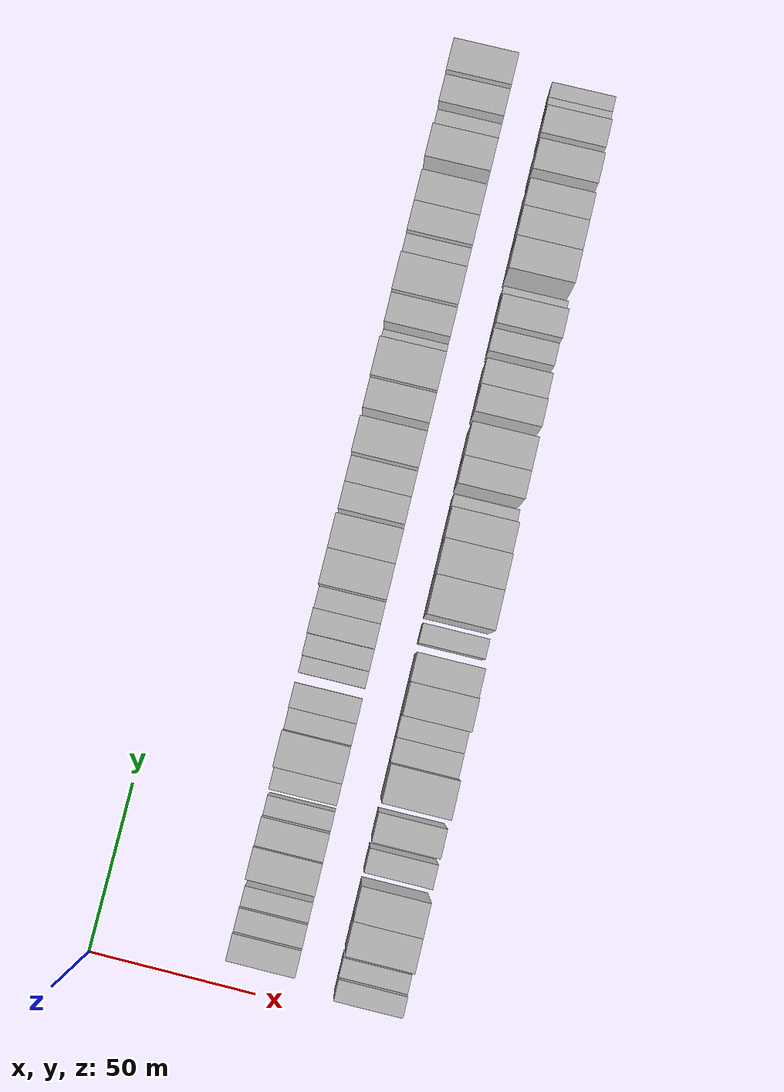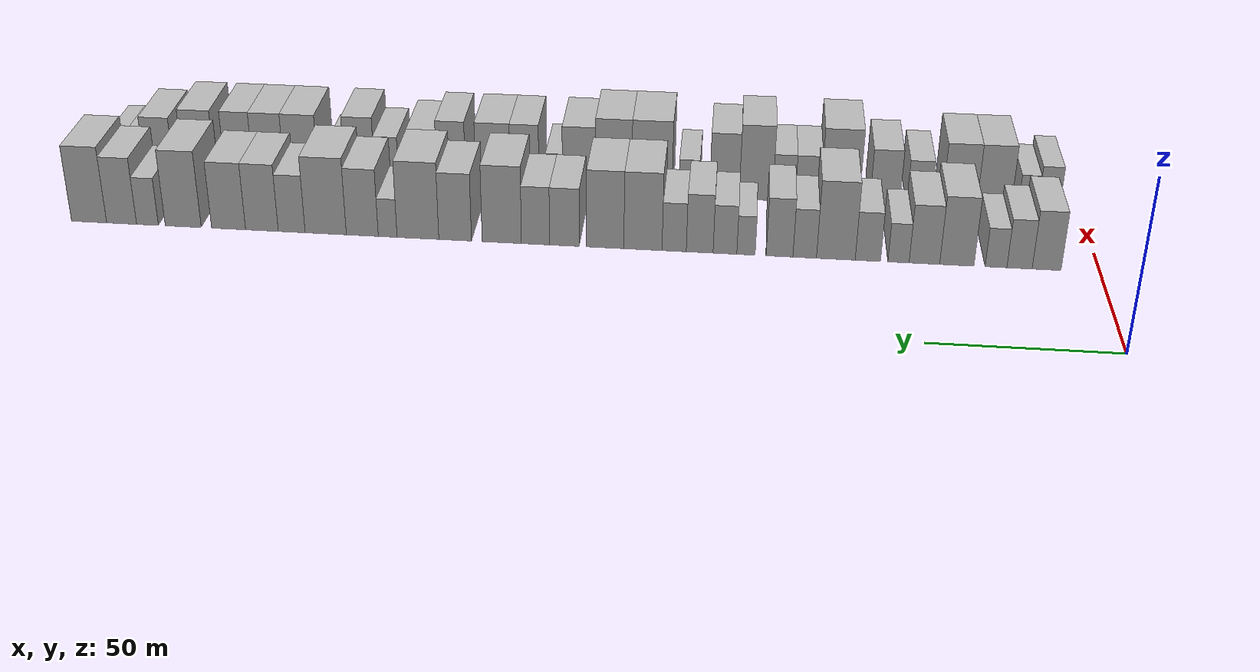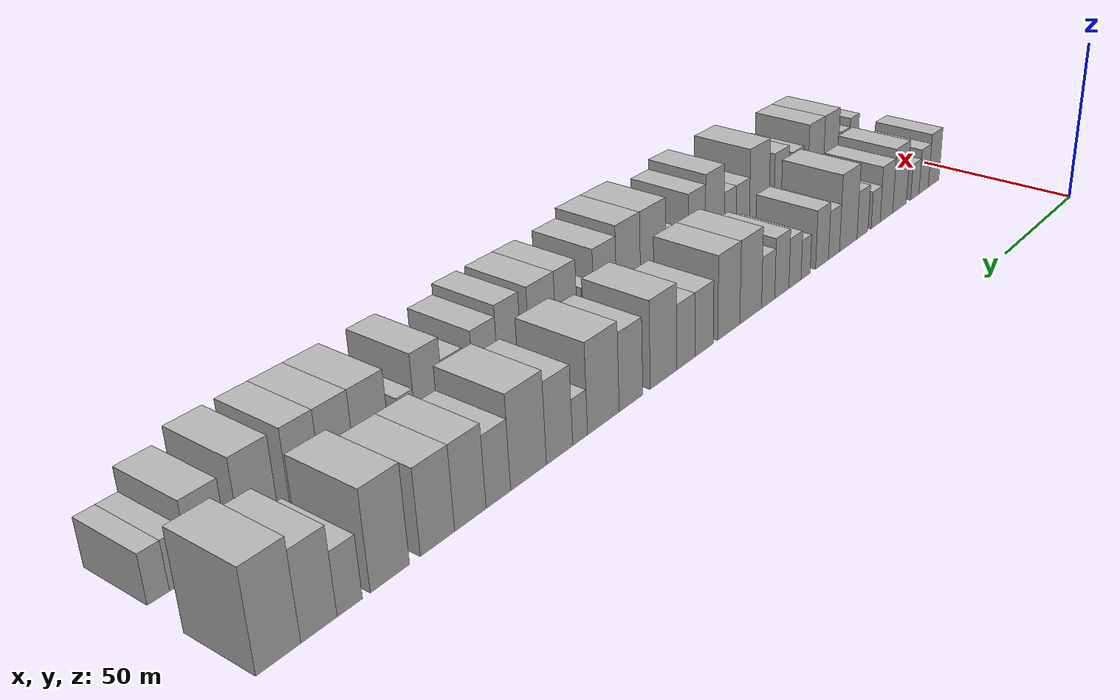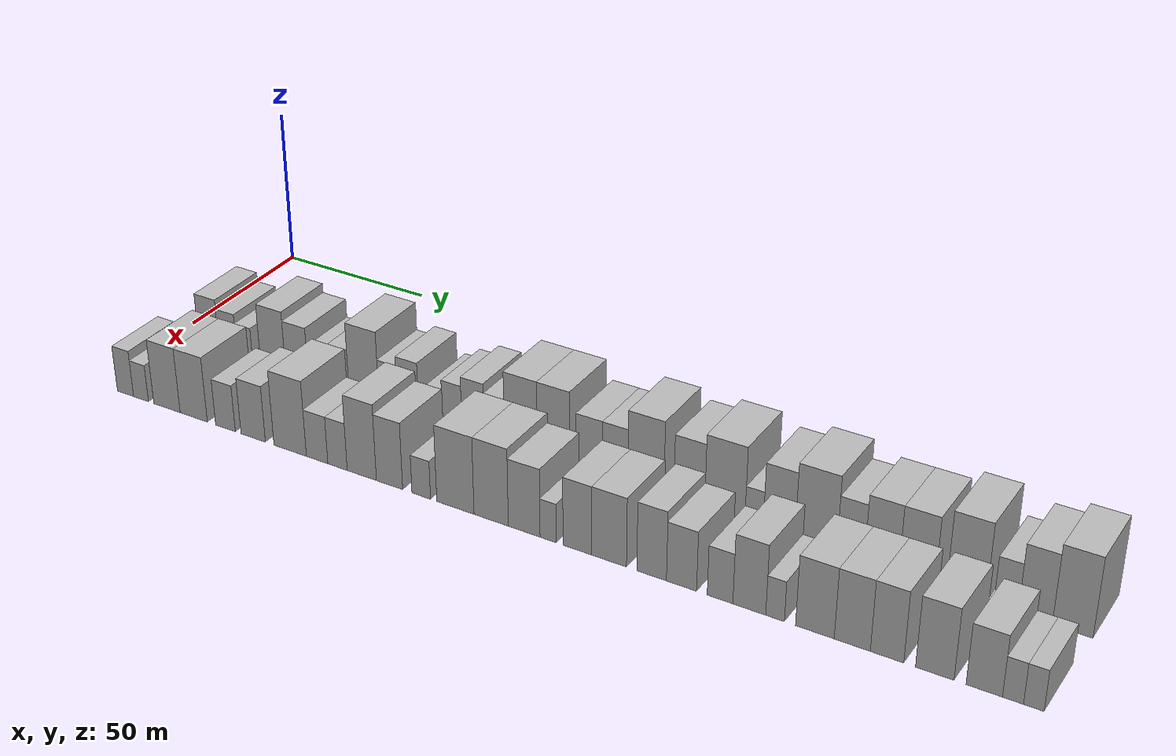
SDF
<sdf version="1.6">
 <world name="default">
  <model name="building_30">
   <static>1</static>
   <pose>50.0000 14.3222 0 0.000000 0.000000 0.000000</pose>
   <link name="link">
    <pose>0 0 9.00 0 0 0</pose>
    <collision name="collision"><geometry><box><size>20.0000 7.6922 18.0000</size></box></geometry></collision>
    <visual name="visual">
     <cast_shadows>0</cast_shadows>
     <geometry><box><size>20.0000 7.6922 18.0000</size></box></geometry>
     <material>
      <script>
       <uri>model://HANNAS_wall/materials/scripts</uri>
       <uri>model://HANNAS_wall/materials/textures</uri>
       <name>vrc/HANNAS_wall</name>
      </script>
     </material>
    </visual>
   </link>
  </model>
  <model name="building_31">
   <static>1</static>
   <pose>50.0000 21.5306 0 0.000000 0.000000 0.000000</pose>
   <link name="link">
    <pose>0 0 7.50 0 0 0</pose>
    <collision name="collision"><geometry><box><size>20.0000 6.7246 15.0000</size></box></geometry></collision>
    <visual name="visual">
     <cast_shadows>0</cast_shadows>
     <geometry><box><size>20.0000 6.7246 15.0000</size></box></geometry>
     <material>
      <script>
       <uri>model://HANNAS_wall/materials/scripts</uri>
       <uri>model://HANNAS_wall/materials/textures</uri>
       <name>vrc/HANNAS_wall</name>
      </script>
     </material>
    </visual>
   </link>
  </model>
  <model name="building_32">
   <static>1</static>
   <pose>50.0000 27.7920 0 0.000000 0.000000 0.000000</pose>
   <link name="link">
    <pose>0 0 6.00 0 0 0</pose>
    <collision name="collision"><geometry><box><size>20.0000 5.7983 12.0000</size></box></geometry></collision>
    <visual name="visual">
     <cast_shadows>0</cast_shadows>
     <geometry><box><size>20.0000 5.7983 12.0000</size></box></geometry>
     <material>
      <script>
       <uri>model://HANNAS_wall/materials/scripts</uri>
       <uri>model://HANNAS_wall/materials/textures</uri>
       <name>vrc/HANNAS_wall</name>
      </script>
     </material>
    </visual>
   </link>
  </model>
  <model name="building_33">
   <static>1</static>
   <pose>50.0000 38.2990 0 0.000000 0.000000 0.000000</pose>
   <link name="link">
    <pose>0 0 10.50 0 0 0</pose>
    <collision name="collision"><geometry><box><size>20.0000 9.2155 21.0000</size></box></geometry></collision>
    <visual name="visual">
     <cast_shadows>0</cast_shadows>
     <geometry><box><size>20.0000 9.2155 21.0000</size></box></geometry>
     <material>
      <script>
       <uri>model://HANNAS_wall/materials/scripts</uri>
       <uri>model://HANNAS_wall/materials/textures</uri>
       <name>vrc/HANNAS_wall</name>
      </script>
     </material>
    </visual>
   </link>
  </model>
  <model name="building_34">
   <static>1</static>
   <pose>50.0000 47.0198 0 0.000000 0.000000 0.000000</pose>
   <link name="link">
    <pose>0 0 9.00 0 0 0</pose>
    <collision name="collision"><geometry><box><size>20.0000 8.2262 18.0000</size></box></geometry></collision>
    <visual name="visual">
     <cast_shadows>0</cast_shadows>
     <geometry><box><size>20.0000 8.2262 18.0000</size></box></geometry>
     <material>
      <script>
       <uri>model://HANNAS_wall/materials/scripts</uri>
       <uri>model://HANNAS_wall/materials/textures</uri>
       <name>vrc/HANNAS_wall</name>
      </script>
     </material>
    </visual>
   </link>
  </model>
  <model name="building_35">
   <static>1</static>
   <pose>50.0000 53.9858 0 0.000000 0.000000 0.000000</pose>
   <link name="link">
    <pose>0 0 6.00 0 0 0</pose>
    <collision name="collision"><geometry><box><size>20.0000 5.7058 12.0000</size></box></geometry></collision>
    <visual name="visual">
     <cast_shadows>0</cast_shadows>
     <geometry><box><size>20.0000 5.7058 12.0000</size></box></geometry>
     <material>
      <script>
       <uri>model://HANNAS_wall/materials/scripts</uri>
       <uri>model://HANNAS_wall/materials/textures</uri>
       <name>vrc/HANNAS_wall</name>
      </script>
     </material>
    </visual>
   </link>
  </model>
  <model name="building_36">
   <static>1</static>
   <pose>50.0000 62.2720 0 0.000000 0.000000 0.000000</pose>
   <link name="link">
    <pose>0 0 7.50 0 0 0</pose>
    <collision name="collision"><geometry><box><size>20.0000 6.8665 15.0000</size></box></geometry></collision>
    <visual name="visual">
     <cast_shadows>0</cast_shadows>
     <geometry><box><size>20.0000 6.8665 15.0000</size></box></geometry>
     <material>
      <script>
       <uri>model://HANNAS_wall/materials/scripts</uri>
       <uri>model://HANNAS_wall/materials/textures</uri>
       <name>vrc/HANNAS_wall</name>
      </script>
     </material>
    </visual>
   </link>
  </model>
  <model name="building_37">
   <static>1</static>
   <pose>50.0000 70.9629 0 0.000000 0.000000 0.000000</pose>
   <link name="link">
    <pose>0 0 12.00 0 0 0</pose>
    <collision name="collision"><geometry><box><size>20.0000 10.5154 24.0000</size></box></geometry></collision>
    <visual name="visual">
     <cast_shadows>0</cast_shadows>
     <geometry><box><size>20.0000 10.5154 24.0000</size></box></geometry>
     <material>
      <script>
       <uri>model://HANNAS_wall/materials/scripts</uri>
       <uri>model://HANNAS_wall/materials/textures</uri>
       <name>vrc/HANNAS_wall</name>
      </script>
     </material>
    </visual>
   </link>
  </model>
  <model name="building_38">
   <static>1</static>
   <pose>50.0000 79.4308 0 0.000000 0.000000 0.000000</pose>
   <link name="link">
    <pose>0 0 7.50 0 0 0</pose>
    <collision name="collision"><geometry><box><size>20.0000 6.4203 15.0000</size></box></geometry></collision>
    <visual name="visual">
     <cast_shadows>0</cast_shadows>
     <geometry><box><size>20.0000 6.4203 15.0000</size></box></geometry>
     <material>
      <script>
       <uri>model://HANNAS_wall/materials/scripts</uri>
       <uri>model://HANNAS_wall/materials/textures</uri>
       <name>vrc/HANNAS_wall</name>
      </script>
     </material>
    </visual>
   </link>
  </model>
  <model name="building_39">
   <static>1</static>
   <pose>50.0000 86.3014 0 0.000000 0.000000 0.000000</pose>
   <link name="link">
    <pose>0 0 9.00 0 0 0</pose>
    <collision name="collision"><geometry><box><size>20.0000 7.3209 18.0000</size></box></geometry></collision>
    <visual name="visual">
     <cast_shadows>0</cast_shadows>
     <geometry><box><size>20.0000 7.3209 18.0000</size></box></geometry>
     <material>
      <script>
       <uri>model://HANNAS_wall/materials/scripts</uri>
       <uri>model://HANNAS_wall/materials/textures</uri>
       <name>vrc/HANNAS_wall</name>
      </script>
     </material>
    </visual>
   </link>
  </model>
  <model name="building_40">
   <static>1</static>
   <pose>50.0000 95.4756 0 0.000000 0.000000 0.000000</pose>
   <link name="link">
    <pose>0 0 6.00 0 0 0</pose>
    <collision name="collision"><geometry><box><size>20.0000 5.0274 12.0000</size></box></geometry></collision>
    <visual name="visual">
     <cast_shadows>0</cast_shadows>
     <geometry><box><size>20.0000 5.0274 12.0000</size></box></geometry>
     <material>
      <script>
       <uri>model://HANNAS_wall/materials/scripts</uri>
       <uri>model://HANNAS_wall/materials/textures</uri>
       <name>vrc/HANNAS_wall</name>
      </script>
     </material>
    </visual>
   </link>
  </model>
  <model name="building_41">
   <static>1</static>
   <pose>50.0000 101.2470 0 0.000000 0.000000 0.000000</pose>
   <link name="link">
    <pose>0 0 7.50 0 0 0</pose>
    <collision name="collision"><geometry><box><size>20.0000 6.5155 15.0000</size></box></geometry></collision>
    <visual name="visual">
     <cast_shadows>0</cast_shadows>
     <geometry><box><size>20.0000 6.5155 15.0000</size></box></geometry>
     <material>
      <script>
       <uri>model://HANNAS_wall/materials/scripts</uri>
       <uri>model://HANNAS_wall/materials/textures</uri>
       <name>vrc/HANNAS_wall</name>
      </script>
     </material>
    </visual>
   </link>
  </model>
  <model name="building_42">
   <static>1</static>
   <pose>50.0000 108.1994 0 0.000000 0.000000 0.000000</pose>
   <link name="link">
    <pose>0 0 9.00 0 0 0</pose>
    <collision name="collision"><geometry><box><size>20.0000 7.3893 18.0000</size></box></geometry></collision>
    <visual name="visual">
     <cast_shadows>0</cast_shadows>
     <geometry><box><size>20.0000 7.3893 18.0000</size></box></geometry>
     <material>
      <script>
       <uri>model://HANNAS_wall/materials/scripts</uri>
       <uri>model://HANNAS_wall/materials/textures</uri>
       <name>vrc/HANNAS_wall</name>
      </script>
     </material>
    </visual>
   </link>
  </model>
  <model name="building_43">
   <static>1</static>
   <pose>50.0000 115.2419 0 0.000000 0.000000 0.000000</pose>
   <link name="link">
    <pose>0 0 7.50 0 0 0</pose>
    <collision name="collision"><geometry><box><size>20.0000 6.6956 15.0000</size></box></geometry></collision>
    <visual name="visual">
     <cast_shadows>0</cast_shadows>
     <geometry><box><size>20.0000 6.6956 15.0000</size></box></geometry>
     <material>
      <script>
       <uri>model://HANNAS_wall/materials/scripts</uri>
       <uri>model://HANNAS_wall/materials/textures</uri>
       <name>vrc/HANNAS_wall</name>
      </script>
     </material>
    </visual>
   </link>
  </model>
  <model name="building_44">
   <static>1</static>
   <pose>50.0000 123.8902 0 0.000000 0.000000 0.000000</pose>
   <link name="link">
    <pose>0 0 12.00 0 0 0</pose>
    <collision name="collision"><geometry><box><size>20.0000 10.6008 24.0000</size></box></geometry></collision>
    <visual name="visual">
     <cast_shadows>0</cast_shadows>
     <geometry><box><size>20.0000 10.6008 24.0000</size></box></geometry>
     <material>
      <script>
       <uri>model://HANNAS_wall/materials/scripts</uri>
       <uri>model://HANNAS_wall/materials/textures</uri>
       <name>vrc/HANNAS_wall</name>
      </script>
     </material>
    </visual>
   </link>
  </model>
  <model name="building_45">
   <static>1</static>
   <pose>50.0000 134.3804 0 0.000000 0.000000 0.000000</pose>
   <link name="link">
    <pose>0 0 12.00 0 0 0</pose>
    <collision name="collision"><geometry><box><size>20.0000 10.3796 24.0000</size></box></geometry></collision>
    <visual name="visual">
     <cast_shadows>0</cast_shadows>
     <geometry><box><size>20.0000 10.3796 24.0000</size></box></geometry>
     <material>
      <script>
       <uri>model://HANNAS_wall/materials/scripts</uri>
       <uri>model://HANNAS_wall/materials/textures</uri>
       <name>vrc/HANNAS_wall</name>
      </script>
     </material>
    </visual>
   </link>
  </model>
  <model name="building_46">
   <static>1</static>
   <pose>50.0000 145.7142 0 0.000000 0.000000 0.000000</pose>
   <link name="link">
    <pose>0 0 9.00 0 0 0</pose>
    <collision name="collision"><geometry><box><size>20.0000 8.2881 18.0000</size></box></geometry></collision>
    <visual name="visual">
     <cast_shadows>0</cast_shadows>
     <geometry><box><size>20.0000 8.2881 18.0000</size></box></geometry>
     <material>
      <script>
       <uri>model://HANNAS_wall/materials/scripts</uri>
       <uri>model://HANNAS_wall/materials/textures</uri>
       <name>vrc/HANNAS_wall</name>
      </script>
     </material>
    </visual>
   </link>
  </model>
  <model name="building_47">
   <static>1</static>
   <pose>50.0000 153.7815 0 0.000000 0.000000 0.000000</pose>
   <link name="link">
    <pose>0 0 9.00 0 0 0</pose>
    <collision name="collision"><geometry><box><size>20.0000 7.8466 18.0000</size></box></geometry></collision>
    <visual name="visual">
     <cast_shadows>0</cast_shadows>
     <geometry><box><size>20.0000 7.8466 18.0000</size></box></geometry>
     <material>
      <script>
       <uri>model://HANNAS_wall/materials/scripts</uri>
       <uri>model://HANNAS_wall/materials/textures</uri>
       <name>vrc/HANNAS_wall</name>
      </script>
     </material>
    </visual>
   </link>
  </model>
  <model name="building_48">
   <static>1</static>
   <pose>50.0000 163.2209 0 0.000000 0.000000 0.000000</pose>
   <link name="link">
    <pose>0 0 12.00 0 0 0</pose>
    <collision name="collision"><geometry><box><size>20.0000 11.0322 24.0000</size></box></geometry></collision>
    <visual name="visual">
     <cast_shadows>0</cast_shadows>
     <geometry><box><size>20.0000 11.0322 24.0000</size></box></geometry>
     <material>
      <script>
       <uri>model://HANNAS_wall/materials/scripts</uri>
       <uri>model://HANNAS_wall/materials/textures</uri>
       <name>vrc/HANNAS_wall</name>
      </script>
     </material>
    </visual>
   </link>
  </model>
  <model name="building_49">
   <static>1</static>
   <pose>50.0000 176.3521 0 0.000000 0.000000 0.000000</pose>
   <link name="link">
    <pose>0 0 10.50 0 0 0</pose>
    <collision name="collision"><geometry><box><size>20.0000 9.2301 21.0000</size></box></geometry></collision>
    <visual name="visual">
     <cast_shadows>0</cast_shadows>
     <geometry><box><size>20.0000 9.2301 21.0000</size></box></geometry>
     <material>
      <script>
       <uri>model://HANNAS_wall/materials/scripts</uri>
       <uri>model://HANNAS_wall/materials/textures</uri>
       <name>vrc/HANNAS_wall</name>
      </script>
     </material>
    </visual>
   </link>
  </model>
  <model name="building_50">
   <static>1</static>
   <pose>50.0000 186.8899 0 0.000000 0.000000 0.000000</pose>
   <link name="link">
    <pose>0 0 12.00 0 0 0</pose>
    <collision name="collision"><geometry><box><size>20.0000 11.8455 24.0000</size></box></geometry></collision>
    <visual name="visual">
     <cast_shadows>0</cast_shadows>
     <geometry><box><size>20.0000 11.8455 24.0000</size></box></geometry>
     <material>
      <script>
       <uri>model://HANNAS_wall/materials/scripts</uri>
       <uri>model://HANNAS_wall/materials/textures</uri>
       <name>vrc/HANNAS_wall</name>
      </script>
     </material>
    </visual>
   </link>
  </model>
  <model name="building_51">
   <static>1</static>
   <pose>50.0000 195.4780 0 0.000000 0.000000 0.000000</pose>
   <link name="link">
    <pose>0 0 6.00 0 0 0</pose>
    <collision name="collision"><geometry><box><size>20.0000 5.3307 12.0000</size></box></geometry></collision>
    <visual name="visual">
     <cast_shadows>0</cast_shadows>
     <geometry><box><size>20.0000 5.3307 12.0000</size></box></geometry>
     <material>
      <script>
       <uri>model://HANNAS_wall/materials/scripts</uri>
       <uri>model://HANNAS_wall/materials/textures</uri>
       <name>vrc/HANNAS_wall</name>
      </script>
     </material>
    </visual>
   </link>
  </model>
  <model name="building_52">
   <static>1</static>
   <pose>50.0000 202.6930 0 0.000000 0.000000 0.000000</pose>
   <link name="link">
    <pose>0 0 10.50 0 0 0</pose>
    <collision name="collision"><geometry><box><size>20.0000 9.0993 21.0000</size></box></geometry></collision>
    <visual name="visual">
     <cast_shadows>0</cast_shadows>
     <geometry><box><size>20.0000 9.0993 21.0000</size></box></geometry>
     <material>
      <script>
       <uri>model://HANNAS_wall/materials/scripts</uri>
       <uri>model://HANNAS_wall/materials/textures</uri>
       <name>vrc/HANNAS_wall</name>
      </script>
     </material>
    </visual>
   </link>
  </model>
  <model name="building_53">
   <static>1</static>
   <pose>50.0000 213.1366 0 0.000000 0.000000 0.000000</pose>
   <link name="link">
    <pose>0 0 12.00 0 0 0</pose>
    <collision name="collision"><geometry><box><size>20.0000 11.7880 24.0000</size></box></geometry></collision>
    <visual name="visual">
     <cast_shadows>0</cast_shadows>
     <geometry><box><size>20.0000 11.7880 24.0000</size></box></geometry>
     <material>
      <script>
       <uri>model://HANNAS_wall/materials/scripts</uri>
       <uri>model://HANNAS_wall/materials/textures</uri>
       <name>vrc/HANNAS_wall</name>
      </script>
     </material>
    </visual>
   </link>
  </model>
  <model name="building_54">
   <static>1</static>
   <pose>50.0000 222.8815 0 0.000000 0.000000 0.000000</pose>
   <link name="link">
    <pose>0 0 9.00 0 0 0</pose>
    <collision name="collision"><geometry><box><size>20.0000 7.7017 18.0000</size></box></geometry></collision>
    <visual name="visual">
     <cast_shadows>0</cast_shadows>
     <geometry><box><size>20.0000 7.7017 18.0000</size></box></geometry>
     <material>
      <script>
       <uri>model://HANNAS_wall/materials/scripts</uri>
       <uri>model://HANNAS_wall/materials/textures</uri>
       <name>vrc/HANNAS_wall</name>
      </script>
     </material>
    </visual>
   </link>
  </model>
  <model name="building_55">
   <static>1</static>
   <pose>50.0000 231.4436 0 0.000000 0.000000 0.000000</pose>
   <link name="link">
    <pose>0 0 10.50 0 0 0</pose>
    <collision name="collision"><geometry><box><size>20.0000 9.4225 21.0000</size></box></geometry></collision>
    <visual name="visual">
     <cast_shadows>0</cast_shadows>
     <geometry><box><size>20.0000 9.4225 21.0000</size></box></geometry>
     <material>
      <script>
       <uri>model://HANNAS_wall/materials/scripts</uri>
       <uri>model://HANNAS_wall/materials/textures</uri>
       <name>vrc/HANNAS_wall</name>
      </script>
     </material>
    </visual>
   </link>
  </model>
  <model name="building_56">
   <static>1</static>
   <pose>50.0000 241.0594 0 0.000000 0.000000 0.000000</pose>
   <link name="link">
    <pose>0 0 10.50 0 0 0</pose>
    <collision name="collision"><geometry><box><size>20.0000 9.8090 21.0000</size></box></geometry></collision>
    <visual name="visual">
     <cast_shadows>0</cast_shadows>
     <geometry><box><size>20.0000 9.8090 21.0000</size></box></geometry>
     <material>
      <script>
       <uri>model://HANNAS_wall/materials/scripts</uri>
       <uri>model://HANNAS_wall/materials/textures</uri>
       <name>vrc/HANNAS_wall</name>
      </script>
     </material>
    </visual>
   </link>
  </model>
  <model name="building_57">
   <static>1</static>
   <pose>50.0000 254.1887 0 0.000000 0.000000 0.000000</pose>
   <link name="link">
    <pose>0 0 12.00 0 0 0</pose>
    <collision name="collision"><geometry><box><size>20.0000 10.4495 24.0000</size></box></geometry></collision>
    <visual name="visual">
     <cast_shadows>0</cast_shadows>
     <geometry><box><size>20.0000 10.4495 24.0000</size></box></geometry>
     <material>
      <script>
       <uri>model://HANNAS_wall/materials/scripts</uri>
       <uri>model://HANNAS_wall/materials/textures</uri>
       <name>vrc/HANNAS_wall</name>
      </script>
     </material>
    </visual>
   </link>
  </model>
  <model name="building_58">
   <static>1</static>
   <pose>50.0000 264.5880 0 0.000000 0.000000 0.000000</pose>
   <link name="link">
    <pose>0 0 7.50 0 0 0</pose>
    <collision name="collision"><geometry><box><size>20.0000 6.3491 15.0000</size></box></geometry></collision>
    <visual name="visual">
     <cast_shadows>0</cast_shadows>
     <geometry><box><size>20.0000 6.3491 15.0000</size></box></geometry>
     <material>
      <script>
       <uri>model://HANNAS_wall/materials/scripts</uri>
       <uri>model://HANNAS_wall/materials/textures</uri>
       <name>vrc/HANNAS_wall</name>
      </script>
     </material>
    </visual>
   </link>
  </model>
  <model name="building_59">
   <static>1</static>
   <pose>50.0000 272.1322 0 0.000000 0.000000 0.000000</pose>
   <link name="link">
    <pose>0 0 10.50 0 0 0</pose>
    <collision name="collision"><geometry><box><size>20.0000 8.7393 21.0000</size></box></geometry></collision>
    <visual name="visual">
     <cast_shadows>0</cast_shadows>
     <geometry><box><size>20.0000 8.7393 21.0000</size></box></geometry>
     <material>
      <script>
       <uri>model://HANNAS_wall/materials/scripts</uri>
       <uri>model://HANNAS_wall/materials/textures</uri>
       <name>vrc/HANNAS_wall</name>
      </script>
     </material>
    </visual>
   </link>
  </model>
  <model name="building_60">
   <static>1</static>
   <pose>50.0000 281.6452 0 0.000000 0.000000 0.000000</pose>
   <link name="link">
    <pose>0 0 12.00 0 0 0</pose>
    <collision name="collision"><geometry><box><size>20.0000 10.2866 24.0000</size></box></geometry></collision>
    <visual name="visual">
     <cast_shadows>0</cast_shadows>
     <geometry><box><size>20.0000 10.2866 24.0000</size></box></geometry>
     <material>
      <script>
       <uri>model://HANNAS_wall/materials/scripts</uri>
       <uri>model://HANNAS_wall/materials/textures</uri>
       <name>vrc/HANNAS_wall</name>
      </script>
     </material>
    </visual>
   </link>
  </model>
  <model name="building_93">
   <static>1</static>
   <pose>82.0000 9.5372 0 0.000000 0.000000 0.000000</pose>
   <link name="link">
    <pose>0 0 7.50 0 0 0</pose>
    <collision name="collision"><geometry><box><size>20.0000 6.0538 15.0000</size></box></geometry></collision>
    <visual name="visual">
     <cast_shadows>0</cast_shadows>
     <geometry><box><size>20.0000 6.0538 15.0000</size></box></geometry>
     <material>
      <script>
       <uri>model://HANNAS_wall/materials/scripts</uri>
       <uri>model://HANNAS_wall/materials/textures</uri>
       <name>vrc/HANNAS_wall</name>
      </script>
     </material>
    </visual>
   </link>
  </model>
  <model name="building_94">
   <static>1</static>
   <pose>82.0000 15.3328 0 0.000000 0.000000 0.000000</pose>
   <link name="link">
    <pose>0 0 6.00 0 0 0</pose>
    <collision name="collision"><geometry><box><size>20.0000 5.5374 12.0000</size></box></geometry></collision>
    <visual name="visual">
     <cast_shadows>0</cast_shadows>
     <geometry><box><size>20.0000 5.5374 12.0000</size></box></geometry>
     <material>
      <script>
       <uri>model://HANNAS_wall/materials/scripts</uri>
       <uri>model://HANNAS_wall/materials/textures</uri>
       <name>vrc/HANNAS_wall</name>
      </script>
     </material>
    </visual>
   </link>
  </model>
  <model name="building_95">
   <static>1</static>
   <pose>82.0000 24.9515 0 0.000000 0.000000 0.000000</pose>
   <link name="link">
    <pose>0 0 10.50 0 0 0</pose>
    <collision name="collision"><geometry><box><size>20.0000 9.7001 21.0000</size></box></geometry></collision>
    <visual name="visual">
     <cast_shadows>0</cast_shadows>
     <geometry><box><size>20.0000 9.7001 21.0000</size></box></geometry>
     <material>
      <script>
       <uri>model://HANNAS_wall/materials/scripts</uri>
       <uri>model://HANNAS_wall/materials/textures</uri>
       <name>vrc/HANNAS_wall</name>
      </script>
     </material>
    </visual>
   </link>
  </model>
  <model name="building_96">
   <static>1</static>
   <pose>82.0000 34.7275 0 0.000000 0.000000 0.000000</pose>
   <link name="link">
    <pose>0 0 10.50 0 0 0</pose>
    <collision name="collision"><geometry><box><size>20.0000 9.8519 21.0000</size></box></geometry></collision>
    <visual name="visual">
     <cast_shadows>0</cast_shadows>
     <geometry><box><size>20.0000 9.8519 21.0000</size></box></geometry>
     <material>
      <script>
       <uri>model://HANNAS_wall/materials/scripts</uri>
       <uri>model://HANNAS_wall/materials/textures</uri>
       <name>vrc/HANNAS_wall</name>
      </script>
     </material>
    </visual>
   </link>
  </model>
  <model name="building_97">
   <static>1</static>
   <pose>82.0000 46.1637 0 0.000000 0.000000 0.000000</pose>
   <link name="link">
    <pose>0 0 7.50 0 0 0</pose>
    <collision name="collision"><geometry><box><size>20.0000 7.0203 15.0000</size></box></geometry></collision>
    <visual name="visual">
     <cast_shadows>0</cast_shadows>
     <geometry><box><size>20.0000 7.0203 15.0000</size></box></geometry>
     <material>
      <script>
       <uri>model://HANNAS_wall/materials/scripts</uri>
       <uri>model://HANNAS_wall/materials/textures</uri>
       <name>vrc/HANNAS_wall</name>
      </script>
     </material>
    </visual>
   </link>
  </model>
  <model name="building_98">
   <static>1</static>
   <pose>82.0000 55.9532 0 0.000000 0.000000 0.000000</pose>
   <link name="link">
    <pose>0 0 9.00 0 0 0</pose>
    <collision name="collision"><geometry><box><size>20.0000 8.5588 18.0000</size></box></geometry></collision>
    <visual name="visual">
     <cast_shadows>0</cast_shadows>
     <geometry><box><size>20.0000 8.5588 18.0000</size></box></geometry>
     <material>
      <script>
       <uri>model://HANNAS_wall/materials/scripts</uri>
       <uri>model://HANNAS_wall/materials/textures</uri>
       <name>vrc/HANNAS_wall</name>
      </script>
     </material>
    </visual>
   </link>
  </model>
  <model name="building_99">
   <static>1</static>
   <pose>82.0000 68.8148 0 0.000000 0.000000 0.000000</pose>
   <link name="link">
    <pose>0 0 12.00 0 0 0</pose>
    <collision name="collision"><geometry><box><size>20.0000 11.1644 24.0000</size></box></geometry></collision>
    <visual name="visual">
     <cast_shadows>0</cast_shadows>
     <geometry><box><size>20.0000 11.1644 24.0000</size></box></geometry>
     <material>
      <script>
       <uri>model://HANNAS_wall/materials/scripts</uri>
       <uri>model://HANNAS_wall/materials/textures</uri>
       <name>vrc/HANNAS_wall</name>
      </script>
     </material>
    </visual>
   </link>
  </model>
  <model name="building_100">
   <static>1</static>
   <pose>82.0000 78.0466 0 0.000000 0.000000 0.000000</pose>
   <link name="link">
    <pose>0 0 7.50 0 0 0</pose>
    <collision name="collision"><geometry><box><size>20.0000 7.2992 15.0000</size></box></geometry></collision>
    <visual name="visual">
     <cast_shadows>0</cast_shadows>
     <geometry><box><size>20.0000 7.2992 15.0000</size></box></geometry>
     <material>
      <script>
       <uri>model://HANNAS_wall/materials/scripts</uri>
       <uri>model://HANNAS_wall/materials/textures</uri>
       <name>vrc/HANNAS_wall</name>
      </script>
     </material>
    </visual>
   </link>
  </model>
  <model name="building_101">
   <static>1</static>
   <pose>82.0000 84.9536 0 0.000000 0.000000 0.000000</pose>
   <link name="link">
    <pose>0 0 7.50 0 0 0</pose>
    <collision name="collision"><geometry><box><size>20.0000 6.5149 15.0000</size></box></geometry></collision>
    <visual name="visual">
     <cast_shadows>0</cast_shadows>
     <geometry><box><size>20.0000 6.5149 15.0000</size></box></geometry>
     <material>
      <script>
       <uri>model://HANNAS_wall/materials/scripts</uri>
       <uri>model://HANNAS_wall/materials/textures</uri>
       <name>vrc/HANNAS_wall</name>
      </script>
     </material>
    </visual>
   </link>
  </model>
  <model name="building_102">
   <static>1</static>
   <pose>82.0000 93.0634 0 0.000000 0.000000 0.000000</pose>
   <link name="link">
    <pose>0 0 12.00 0 0 0</pose>
    <collision name="collision"><geometry><box><size>20.0000 9.7048 24.0000</size></box></geometry></collision>
    <visual name="visual">
     <cast_shadows>0</cast_shadows>
     <geometry><box><size>20.0000 9.7048 24.0000</size></box></geometry>
     <material>
      <script>
       <uri>model://HANNAS_wall/materials/scripts</uri>
       <uri>model://HANNAS_wall/materials/textures</uri>
       <name>vrc/HANNAS_wall</name>
      </script>
     </material>
    </visual>
   </link>
  </model>
  <model name="building_103">
   <static>1</static>
   <pose>82.0000 102.2162 0 0.000000 0.000000 0.000000</pose>
   <link name="link">
    <pose>0 0 10.50 0 0 0</pose>
    <collision name="collision"><geometry><box><size>20.0000 8.6007 21.0000</size></box></geometry></collision>
    <visual name="visual">
     <cast_shadows>0</cast_shadows>
     <geometry><box><size>20.0000 8.6007 21.0000</size></box></geometry>
     <material>
      <script>
       <uri>model://HANNAS_wall/materials/scripts</uri>
       <uri>model://HANNAS_wall/materials/textures</uri>
       <name>vrc/HANNAS_wall</name>
      </script>
     </material>
    </visual>
   </link>
  </model>
  <model name="building_104">
   <static>1</static>
   <pose>82.0000 112.5099 0 0.000000 0.000000 0.000000</pose>
   <link name="link">
    <pose>0 0 6.00 0 0 0</pose>
    <collision name="collision"><geometry><box><size>20.0000 5.9868 12.0000</size></box></geometry></collision>
    <visual name="visual">
     <cast_shadows>0</cast_shadows>
     <geometry><box><size>20.0000 5.9868 12.0000</size></box></geometry>
     <material>
      <script>
       <uri>model://HANNAS_wall/materials/scripts</uri>
       <uri>model://HANNAS_wall/materials/textures</uri>
       <name>vrc/HANNAS_wall</name>
      </script>
     </material>
    </visual>
   </link>
  </model>
  <model name="building_105">
   <static>1</static>
   <pose>82.0000 123.4029 0 0.000000 0.000000 0.000000</pose>
   <link name="link">
    <pose>0 0 12.00 0 0 0</pose>
    <collision name="collision"><geometry><box><size>20.0000 11.7992 24.0000</size></box></geometry></collision>
    <visual name="visual">
     <cast_shadows>0</cast_shadows>
     <geometry><box><size>20.0000 11.7992 24.0000</size></box></geometry>
     <material>
      <script>
       <uri>model://HANNAS_wall/materials/scripts</uri>
       <uri>model://HANNAS_wall/materials/textures</uri>
       <name>vrc/HANNAS_wall</name>
      </script>
     </material>
    </visual>
   </link>
  </model>
  <model name="building_106">
   <static>1</static>
   <pose>82.0000 134.6473 0 0.000000 0.000000 0.000000</pose>
   <link name="link">
    <pose>0 0 12.00 0 0 0</pose>
    <collision name="collision"><geometry><box><size>20.0000 10.6896 24.0000</size></box></geometry></collision>
    <visual name="visual">
     <cast_shadows>0</cast_shadows>
     <geometry><box><size>20.0000 10.6896 24.0000</size></box></geometry>
     <material>
      <script>
       <uri>model://HANNAS_wall/materials/scripts</uri>
       <uri>model://HANNAS_wall/materials/textures</uri>
       <name>vrc/HANNAS_wall</name>
      </script>
     </material>
    </visual>
   </link>
  </model>
  <model name="building_107">
   <static>1</static>
   <pose>82.0000 144.8367 0 0.000000 0.000000 0.000000</pose>
   <link name="link">
    <pose>0 0 10.50 0 0 0</pose>
    <collision name="collision"><geometry><box><size>20.0000 9.6892 21.0000</size></box></geometry></collision>
    <visual name="visual">
     <cast_shadows>0</cast_shadows>
     <geometry><box><size>20.0000 9.6892 21.0000</size></box></geometry>
     <material>
      <script>
       <uri>model://HANNAS_wall/materials/scripts</uri>
       <uri>model://HANNAS_wall/materials/textures</uri>
       <name>vrc/HANNAS_wall</name>
      </script>
     </material>
    </visual>
   </link>
  </model>
  <model name="building_108">
   <static>1</static>
   <pose>82.0000 152.1466 0 0.000000 0.000000 0.000000</pose>
   <link name="link">
    <pose>0 0 6.00 0 0 0</pose>
    <collision name="collision"><geometry><box><size>20.0000 4.9305 12.0000</size></box></geometry></collision>
    <visual name="visual">
     <cast_shadows>0</cast_shadows>
     <geometry><box><size>20.0000 4.9305 12.0000</size></box></geometry>
     <material>
      <script>
       <uri>model://HANNAS_wall/materials/scripts</uri>
       <uri>model://HANNAS_wall/materials/textures</uri>
       <name>vrc/HANNAS_wall</name>
      </script>
     </material>
    </visual>
   </link>
  </model>
  <model name="building_109">
   <static>1</static>
   <pose>82.0000 160.8517 0 0.000000 0.000000 0.000000</pose>
   <link name="link">
    <pose>0 0 10.50 0 0 0</pose>
    <collision name="collision"><geometry><box><size>20.0000 8.4798 21.0000</size></box></geometry></collision>
    <visual name="visual">
     <cast_shadows>0</cast_shadows>
     <geometry><box><size>20.0000 8.4798 21.0000</size></box></geometry>
     <material>
      <script>
       <uri>model://HANNAS_wall/materials/scripts</uri>
       <uri>model://HANNAS_wall/materials/textures</uri>
       <name>vrc/HANNAS_wall</name>
      </script>
     </material>
    </visual>
   </link>
  </model>
  <model name="building_110">
   <static>1</static>
   <pose>82.0000 170.2266 0 0.000000 0.000000 0.000000</pose>
   <link name="link">
    <pose>0 0 10.50 0 0 0</pose>
    <collision name="collision"><geometry><box><size>20.0000 10.2701 21.0000</size></box></geometry></collision>
    <visual name="visual">
     <cast_shadows>0</cast_shadows>
     <geometry><box><size>20.0000 10.2701 21.0000</size></box></geometry>
     <material>
      <script>
       <uri>model://HANNAS_wall/materials/scripts</uri>
       <uri>model://HANNAS_wall/materials/textures</uri>
       <name>vrc/HANNAS_wall</name>
      </script>
     </material>
    </visual>
   </link>
  </model>
  <model name="building_111">
   <static>1</static>
   <pose>82.0000 182.6256 0 0.000000 0.000000 0.000000</pose>
   <link name="link">
    <pose>0 0 10.50 0 0 0</pose>
    <collision name="collision"><geometry><box><size>20.0000 8.5278 21.0000</size></box></geometry></collision>
    <visual name="visual">
     <cast_shadows>0</cast_shadows>
     <geometry><box><size>20.0000 8.5278 21.0000</size></box></geometry>
     <material>
      <script>
       <uri>model://HANNAS_wall/materials/scripts</uri>
       <uri>model://HANNAS_wall/materials/textures</uri>
       <name>vrc/HANNAS_wall</name>
      </script>
     </material>
    </visual>
   </link>
  </model>
  <model name="building_112">
   <static>1</static>
   <pose>82.0000 191.1655 0 0.000000 0.000000 0.000000</pose>
   <link name="link">
    <pose>0 0 9.00 0 0 0</pose>
    <collision name="collision"><geometry><box><size>20.0000 8.5521 18.0000</size></box></geometry></collision>
    <visual name="visual">
     <cast_shadows>0</cast_shadows>
     <geometry><box><size>20.0000 8.5521 18.0000</size></box></geometry>
     <material>
      <script>
       <uri>model://HANNAS_wall/materials/scripts</uri>
       <uri>model://HANNAS_wall/materials/textures</uri>
       <name>vrc/HANNAS_wall</name>
      </script>
     </material>
    </visual>
   </link>
  </model>
  <model name="building_113">
   <static>1</static>
   <pose>82.0000 202.0079 0 0.000000 0.000000 0.000000</pose>
   <link name="link">
    <pose>0 0 7.50 0 0 0</pose>
    <collision name="collision"><geometry><box><size>20.0000 7.1326 15.0000</size></box></geometry></collision>
    <visual name="visual">
     <cast_shadows>0</cast_shadows>
     <geometry><box><size>20.0000 7.1326 15.0000</size></box></geometry>
     <material>
      <script>
       <uri>model://HANNAS_wall/materials/scripts</uri>
       <uri>model://HANNAS_wall/materials/textures</uri>
       <name>vrc/HANNAS_wall</name>
      </script>
     </material>
    </visual>
   </link>
  </model>
  <model name="building_114">
   <static>1</static>
   <pose>82.0000 210.0907 0 0.000000 0.000000 0.000000</pose>
   <link name="link">
    <pose>0 0 10.50 0 0 0</pose>
    <collision name="collision"><geometry><box><size>20.0000 9.0331 21.0000</size></box></geometry></collision>
    <visual name="visual">
     <cast_shadows>0</cast_shadows>
     <geometry><box><size>20.0000 9.0331 21.0000</size></box></geometry>
     <material>
      <script>
       <uri>model://HANNAS_wall/materials/scripts</uri>
       <uri>model://HANNAS_wall/materials/textures</uri>
       <name>vrc/HANNAS_wall</name>
      </script>
     </material>
    </visual>
   </link>
  </model>
  <model name="building_115">
   <static>1</static>
   <pose>82.0000 217.1398 0 0.000000 0.000000 0.000000</pose>
   <link name="link">
    <pose>0 0 6.00 0 0 0</pose>
    <collision name="collision"><geometry><box><size>20.0000 5.0650 12.0000</size></box></geometry></collision>
    <visual name="visual">
     <cast_shadows>0</cast_shadows>
     <geometry><box><size>20.0000 5.0650 12.0000</size></box></geometry>
     <material>
      <script>
       <uri>model://HANNAS_wall/materials/scripts</uri>
       <uri>model://HANNAS_wall/materials/textures</uri>
       <name>vrc/HANNAS_wall</name>
      </script>
     </material>
    </visual>
   </link>
  </model>
  <model name="building_116">
   <static>1</static>
   <pose>82.0000 227.8277 0 0.000000 0.000000 0.000000</pose>
   <link name="link">
    <pose>0 0 10.50 0 0 0</pose>
    <collision name="collision"><geometry><box><size>20.0000 10.3108 21.0000</size></box></geometry></collision>
    <visual name="visual">
     <cast_shadows>0</cast_shadows>
     <geometry><box><size>20.0000 10.3108 21.0000</size></box></geometry>
     <material>
      <script>
       <uri>model://HANNAS_wall/materials/scripts</uri>
       <uri>model://HANNAS_wall/materials/textures</uri>
       <name>vrc/HANNAS_wall</name>
      </script>
     </material>
    </visual>
   </link>
  </model>
  <model name="building_117">
   <static>1</static>
   <pose>82.0000 237.7114 0 0.000000 0.000000 0.000000</pose>
   <link name="link">
    <pose>0 0 10.50 0 0 0</pose>
    <collision name="collision"><geometry><box><size>20.0000 9.4568 21.0000</size></box></geometry></collision>
    <visual name="visual">
     <cast_shadows>0</cast_shadows>
     <geometry><box><size>20.0000 9.4568 21.0000</size></box></geometry>
     <material>
      <script>
       <uri>model://HANNAS_wall/materials/scripts</uri>
       <uri>model://HANNAS_wall/materials/textures</uri>
       <name>vrc/HANNAS_wall</name>
      </script>
     </material>
    </visual>
   </link>
  </model>
  <model name="building_118">
   <static>1</static>
   <pose>82.0000 246.7508 0 0.000000 0.000000 0.000000</pose>
   <link name="link">
    <pose>0 0 10.50 0 0 0</pose>
    <collision name="collision"><geometry><box><size>20.0000 8.6220 21.0000</size></box></geometry></collision>
    <visual name="visual">
     <cast_shadows>0</cast_shadows>
     <geometry><box><size>20.0000 8.6220 21.0000</size></box></geometry>
     <material>
      <script>
       <uri>model://HANNAS_wall/materials/scripts</uri>
       <uri>model://HANNAS_wall/materials/textures</uri>
       <name>vrc/HANNAS_wall</name>
      </script>
     </material>
    </visual>
   </link>
  </model>
  <model name="building_119">
   <static>1</static>
   <pose>82.0000 258.9261 0 0.000000 0.000000 0.000000</pose>
   <link name="link">
    <pose>0 0 10.50 0 0 0</pose>
    <collision name="collision"><geometry><box><size>20.0000 9.7286 21.0000</size></box></geometry></collision>
    <visual name="visual">
     <cast_shadows>0</cast_shadows>
     <geometry><box><size>20.0000 9.7286 21.0000</size></box></geometry>
     <material>
      <script>
       <uri>model://HANNAS_wall/materials/scripts</uri>
       <uri>model://HANNAS_wall/materials/textures</uri>
       <name>vrc/HANNAS_wall</name>
      </script>
     </material>
    </visual>
   </link>
  </model>
  <model name="building_120">
   <static>1</static>
   <pose>82.0000 271.2804 0 0.000000 0.000000 0.000000</pose>
   <link name="link">
    <pose>0 0 9.00 0 0 0</pose>
    <collision name="collision"><geometry><box><size>20.0000 8.9799 18.0000</size></box></geometry></collision>
    <visual name="visual">
     <cast_shadows>0</cast_shadows>
     <geometry><box><size>20.0000 8.9799 18.0000</size></box></geometry>
     <material>
      <script>
       <uri>model://HANNAS_wall/materials/scripts</uri>
       <uri>model://HANNAS_wall/materials/textures</uri>
       <name>vrc/HANNAS_wall</name>
      </script>
     </material>
    </visual>
   </link>
  </model>
  <model name="building_121">
   <static>1</static>
   <pose>82.0000 278.3349 0 0.000000 0.000000 0.000000</pose>
   <link name="link">
    <pose>0 0 6.00 0 0 0</pose>
    <collision name="collision"><geometry><box><size>20.0000 5.1290 12.0000</size></box></geometry></collision>
    <visual name="visual">
     <cast_shadows>0</cast_shadows>
     <geometry><box><size>20.0000 5.1290 12.0000</size></box></geometry>
     <material>
      <script>
       <uri>model://HANNAS_wall/materials/scripts</uri>
       <uri>model://HANNAS_wall/materials/textures</uri>
       <name>vrc/HANNAS_wall</name>
      </script>
     </material>
    </visual>
   </link>
  </model>
  <model name="building_122">
   <static>1</static>
   <pose>82.0000 283.3926 0 0.000000 0.000000 0.000000</pose>
   <link name="link">
    <pose>0 0 6.00 0 0 0</pose>
    <collision name="collision"><geometry><box><size>20.0000 4.9864 12.0000</size></box></geometry></collision>
    <visual name="visual">
     <cast_shadows>0</cast_shadows>
     <geometry><box><size>20.0000 4.9864 12.0000</size></box></geometry>
     <material>
      <script>
       <uri>model://HANNAS_wall/materials/scripts</uri>
       <uri>model://HANNAS_wall/materials/textures</uri>
       <name>vrc/HANNAS_wall</name>
      </script>
     </material>
    </visual>
   </link>
  </model>
 </world>
</sdf>
